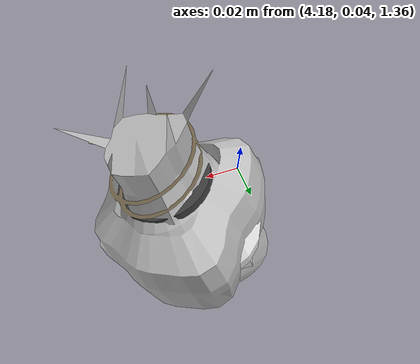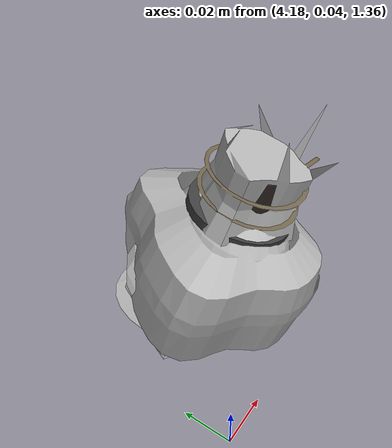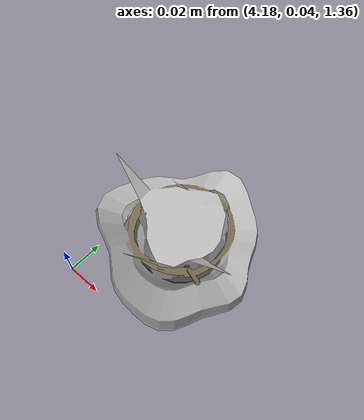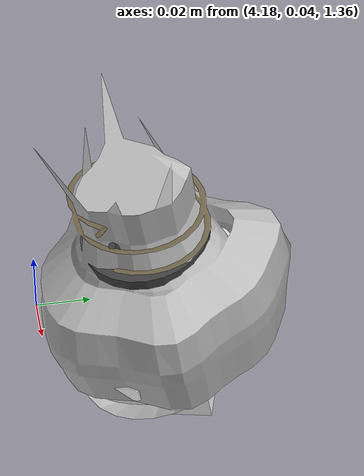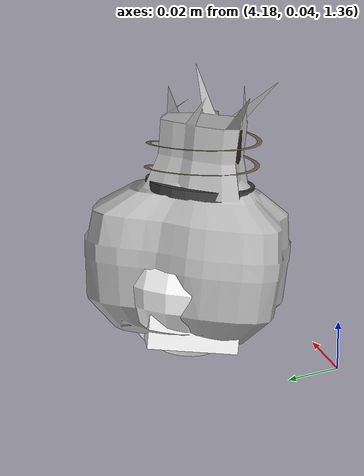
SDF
<sdf version="1.11">
 <world name="peach_orchard">
  <model name="ground">
   <static>true</static>
   <link name="link">
    <visual name="soil">
     <geometry><plane><normal>0 0 1</normal><size>32 22</size></plane></geometry>
     <material>
      <ambient>1 1 1 1</ambient>
      <diffuse>1 1 1 1</diffuse>
      <specular>0.1 0.1 0.1 1</specular>
      <pbr>
       <metal>
        <albedo_map>textures/soil_albedo.png</albedo_map>
        <normal_map type="tangent">textures/soil_normal.png</normal_map>
        <roughness>0.95</roughness>
        <metalness>0</metalness>
       </metal>
      </pbr>
     </material>
    </visual>
    <collision name="c_soil">
     <geometry><plane><normal>0 0 1</normal><size>32 22</size></plane></geometry>
    </collision>
   </link>
  </model>
  <model name="peach_tree_r3_t3_00">
   <pose>4.22 0.0835023 1.36297 0 0.318598 -0.714301</pose>
   <static>true</static>
   <link name="bag">
    <visual name="bag_mesh">
     <pose>0 0 0.0413978 0 0 -0</pose>
     <geometry>
      <mesh><uri>model://peach_sim/meshes/bagged_peach.glb</uri><scale>0.950111 1.12419 0.940858</scale></mesh>
     </geometry>
    </visual>
    <visual name="body">
     <pose>0 0 0.0233978 0 0 0</pose>
     <geometry><ellipsoid><radii>0.0356292 0.0292291 0.0252696</radii></ellipsoid></geometry>
     <material>
      <ambient>1 1 1 1</ambient>
      <diffuse>1 1 1 1</diffuse>
      <specular>0.1 0.1 0.1 1</specular>
      <pbr>
       <metal>
        <albedo_map>textures/paper_bag_albedo.png</albedo_map>
        <normal_map type="tangent">textures/paper_bag_normal.png</normal_map>
        <roughness>0.72</roughness>
        <metalness>0</metalness>
       </metal>
      </pbr>
     </material>
    </visual>
    <visual name="bottom_fold">
     <pose>0 0 0.012 0 0 0.35</pose>
     <geometry><box><size>0.0552252 0.0336134 0.022</size></box></geometry>
     <material>
      <ambient>1 1 1 1</ambient>
      <diffuse>1 1 1 1</diffuse>
      <specular>0.1 0.1 0.1 1</specular>
      <pbr>
       <metal>
        <albedo_map>textures/paper_bag_albedo.png</albedo_map>
        <normal_map type="tangent">textures/paper_bag_normal.png</normal_map>
        <roughness>0.8</roughness>
        <metalness>0</metalness>
       </metal>
      </pbr>
     </material>
    </visual>
    <visual name="fruit">
     <pose>0 0 0.0215985 0 0 0</pose>
     <geometry><sphere><radius>0.0287025</radius></sphere></geometry>
     <material>
      <ambient>1 1 1 1</ambient>
      <diffuse>1 1 1 1</diffuse>
      <specular>0.1 0.1 0.1 1</specular>
      <pbr>
       <metal>
        <albedo_map>textures/fruit_skin_albedo.png</albedo_map>
        <normal_map type="tangent">textures/fruit_skin_normal.png</normal_map>
        <roughness>0.55</roughness>
        <metalness>0</metalness>
       </metal>
      </pbr>
     </material>
    </visual>
    <visual name="neck">
     <pose>0 0 0.0557955 0 0 0</pose>
     <geometry><cylinder><radius>0.013</radius><length>0.018</length></cylinder></geometry>
     <material>
      <ambient>1 1 1 1</ambient>
      <diffuse>1 1 1 1</diffuse>
      <specular>0.1 0.1 0.1 1</specular>
      <pbr>
       <metal>
        <albedo_map>textures/paper_bag_albedo.png</albedo_map>
        <normal_map type="tangent">textures/paper_bag_normal.png</normal_map>
        <roughness>0.75</roughness>
        <metalness>0</metalness>
       </metal>
      </pbr>
     </material>
    </visual>
    <visual name="gather">
     <pose>0 0 0.0367955 0 0 0</pose>
     <geometry><cylinder><radius>0.019</radius><length>0.02</length></cylinder></geometry>
     <material>
      <ambient>1 1 1 1</ambient>
      <diffuse>1 1 1 1</diffuse>
      <specular>0.1 0.1 0.1 1</specular>
      <pbr>
       <metal>
        <albedo_map>textures/paper_bag_albedo.png</albedo_map>
        <normal_map type="tangent">textures/paper_bag_normal.png</normal_map>
        <roughness>0.8</roughness>
        <metalness>0</metalness>
       </metal>
      </pbr>
     </material>
    </visual>
    <visual name="inner_paper">
     <pose>0 0 0.0607955 0 0 0</pose>
     <geometry><cylinder><radius>0.01</radius><length>0.008</length></cylinder></geometry>
     <material>
      <ambient>0.180392 0.14902 0.133333 1</ambient>
      <diffuse>0.180392 0.14902 0.133333 1</diffuse>
      <specular>0.1 0.1 0.1 1</specular>
     </material>
    </visual>
    <visual name="wire_0">
     <pose>0 0 0.0507955 0 0 0</pose>
     <geometry><cylinder><radius>0.0205</radius><length>0.0035</length></cylinder></geometry>
     <material>
      <ambient>0.25 0.25 0.25 1</ambient>
      <diffuse>0.25 0.25 0.25 1</diffuse>
      <specular>0.1 0.1 0.1 1</specular>
     </material>
    </visual>
    <visual name="wire_1">
     <pose>0 0 0.0577955 0 0 0</pose>
     <geometry><cylinder><radius>0.0205</radius><length>0.0035</length></cylinder></geometry>
     <material>
      <ambient>0.25 0.25 0.25 1</ambient>
      <diffuse>0.25 0.25 0.25 1</diffuse>
      <specular>0.1 0.1 0.1 1</specular>
     </material>
    </visual>
    <visual name="wire_tail">
     <pose>0.01 0 0.0587955 0 0.521618 0</pose>
     <geometry><cylinder><radius>0.0012</radius><length>0.026</length></cylinder></geometry>
     <material>
      <ambient>0.25 0.25 0.25 1</ambient>
      <diffuse>0.25 0.25 0.25 1</diffuse>
      <specular>0.1 0.1 0.1 1</specular>
     </material>
    </visual>
    <collision name="c_body">
     <pose>0 0 0.0233978 0 0 0</pose>
     <geometry><cylinder><radius>0.0356292</radius><length>0.0467955</length></cylinder></geometry>
    </collision>
   </link>
  </model>
 </world>
</sdf>
